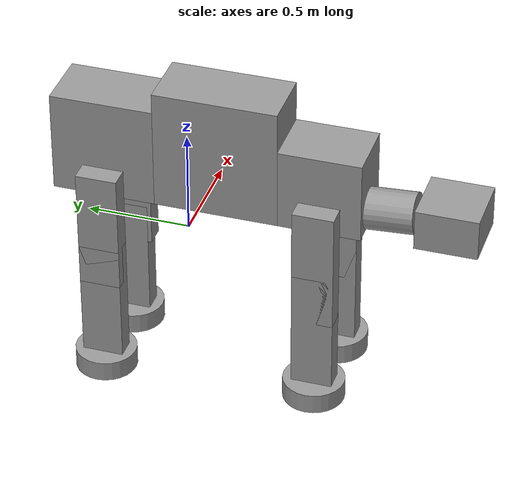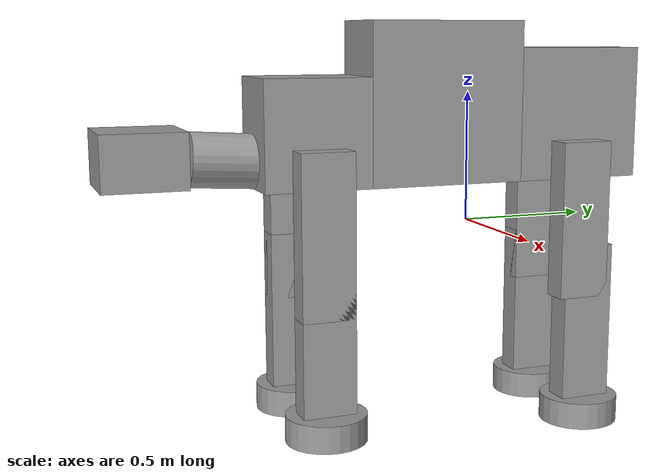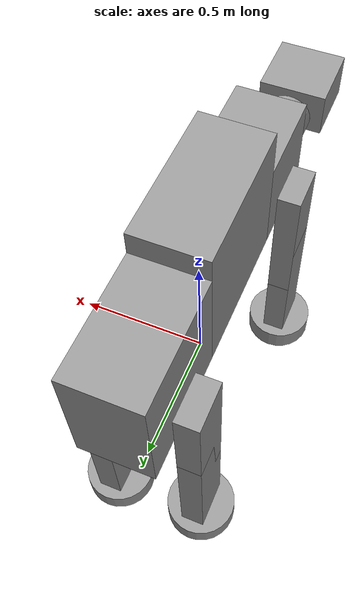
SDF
<?xml version='1.0'?>
<sdf version='1.6'>
  <model name='ATATwalker'>
    <link name='link_0'>
      <pose frame=''>0.046682 -0.166805 0.469107 0 -0 0</pose>
      <inertial>
        <mass>1</mass>
        <inertia>
          <ixx>0.166667</ixx>
          <ixy>0</ixy>
          <ixz>0</ixz>
          <iyy>0.166667</iyy>
          <iyz>0</iyz>
          <izz>0.166667</izz>
        </inertia>
        <pose frame=''>0 0 0 0 -0 0</pose>
      </inertial>
      <gravity>1</gravity>
      <self_collide>0</self_collide>
      <kinematic>0</kinematic>
      <visual name='visual'>
        <pose frame=''>0 0 0 0 -0 0</pose>
        <geometry>
          <box>
            <size>0.3 0.6 0.6</size>
          </box>
        </geometry>
        <material>
          <lighting>1</lighting>
          <script>
            <uri>file://media/materials/scripts/gazebo.material</uri>
            <name>Gazebo/Grey</name>
          </script>
          <ambient>0.3 0.3 0.3 1</ambient>
          <diffuse>0.7 0.7 0.7 1</diffuse>
          <specular>0.01 0.01 0.01 1</specular>
          <emissive>0 0 0 1</emissive>
          <shader type='vertex'>
            <normal_map>__default__</normal_map>
          </shader>
        </material>
        <transparency>0</transparency>
        <cast_shadows>1</cast_shadows>
      </visual>
      <collision name='collision'>
        <laser_retro>0</laser_retro>
        <max_contacts>10</max_contacts>
        <pose frame=''>0 0 0 0 -0 0</pose>
        <geometry>
          <box>
            <size>0.3 0.6 0.6</size>
          </box>
        </geometry>
        <surface>
          <friction>
            <ode>
              <mu>1</mu>
              <mu2>1</mu2>
              <fdir1>0 0 0</fdir1>
              <slip1>0</slip1>
              <slip2>0</slip2>
            </ode>
            <torsional>
              <coefficient>1</coefficient>
              <patch_radius>0</patch_radius>
              <surface_radius>0</surface_radius>
              <use_patch_radius>1</use_patch_radius>
              <ode>
                <slip>0</slip>
              </ode>
            </torsional>
          </friction>
          <bounce>
            <restitution_coefficient>0</restitution_coefficient>
            <threshold>1e+06</threshold>
          </bounce>
          <contact>
            <collide_without_contact>0</collide_without_contact>
            <collide_without_contact_bitmask>1</collide_without_contact_bitmask>
            <collide_bitmask>1</collide_bitmask>
            <ode>
              <soft_cfm>0</soft_cfm>
              <soft_erp>0.2</soft_erp>
              <kp>1e+13</kp>
              <kd>1</kd>
              <max_vel>0.01</max_vel>
              <min_depth>0</min_depth>
            </ode>
            <bullet>
              <split_impulse>1</split_impulse>
              <split_impulse_penetration_threshold>-0.01</split_impulse_penetration_threshold>
              <soft_cfm>0</soft_cfm>
              <soft_erp>0.2</soft_erp>
              <kp>1e+13</kp>
              <kd>1</kd>
            </bullet>
          </contact>
        </surface>
      </collision>
    </link>
    <link name='link_0_clone'>
      <pose frame=''>0.046682 0.383195 0.419107 0 -0 0</pose>
      <inertial>
        <mass>1</mass>
        <inertia>
          <ixx>0.166667</ixx>
          <ixy>0</ixy>
          <ixz>0</ixz>
          <iyy>0.166667</iyy>
          <iyz>0</iyz>
          <izz>0.166667</izz>
        </inertia>
        <pose frame=''>0 0 0 0 -0 0</pose>
      </inertial>
      <self_collide>0</self_collide>
      <kinematic>0</kinematic>
      <gravity>1</gravity>
      <visual name='visual'>
        <pose frame=''>0 0 0 0 -0 0</pose>
        <geometry>
          <box>
            <size>0.3 0.5 0.5</size>
          </box>
        </geometry>
        <material>
          <lighting>1</lighting>
          <script>
            <uri>file://media/materials/scripts/gazebo.material</uri>
            <name>Gazebo/Grey</name>
          </script>
          <ambient>0.3 0.3 0.3 1</ambient>
          <diffuse>0.7 0.7 0.7 1</diffuse>
          <specular>0.01 0.01 0.01 1</specular>
          <emissive>0 0 0 1</emissive>
          <shader type='vertex'>
            <normal_map>__default__</normal_map>
          </shader>
        </material>
        <transparency>0</transparency>
        <cast_shadows>1</cast_shadows>
      </visual>
      <collision name='collision'>
        <laser_retro>0</laser_retro>
        <max_contacts>10</max_contacts>
        <pose frame=''>0 0 0 0 -0 0</pose>
        <geometry>
          <box>
            <size>0.3 0.5 0.5</size>
          </box>
        </geometry>
        <surface>
          <friction>
            <ode>
              <mu>1</mu>
              <mu2>1</mu2>
              <fdir1>0 0 0</fdir1>
              <slip1>0</slip1>
              <slip2>0</slip2>
            </ode>
            <torsional>
              <coefficient>1</coefficient>
              <patch_radius>0</patch_radius>
              <surface_radius>0</surface_radius>
              <use_patch_radius>1</use_patch_radius>
              <ode>
                <slip>0</slip>
              </ode>
            </torsional>
          </friction>
          <bounce>
            <restitution_coefficient>0</restitution_coefficient>
            <threshold>1e+06</threshold>
          </bounce>
          <contact>
            <collide_without_contact>0</collide_without_contact>
            <collide_without_contact_bitmask>1</collide_without_contact_bitmask>
            <collide_bitmask>1</collide_bitmask>
            <ode>
              <soft_cfm>0</soft_cfm>
              <soft_erp>0.2</soft_erp>
              <kp>1e+13</kp>
              <kd>1</kd>
              <max_vel>0.01</max_vel>
              <min_depth>0</min_depth>
            </ode>
            <bullet>
              <split_impulse>1</split_impulse>
              <split_impulse_penetration_threshold>-0.01</split_impulse_penetration_threshold>
              <soft_cfm>0</soft_cfm>
              <soft_erp>0.2</soft_erp>
              <kp>1e+13</kp>
              <kd>1</kd>
            </bullet>
          </contact>
        </surface>
      </collision>
    </link>
    <link name='link_0_clone_clone'>
      <pose frame=''>0.046682 -0.666805 0.369107 0 -0 0</pose>
      <inertial>
        <mass>1</mass>
        <inertia>
          <ixx>0.166667</ixx>
          <ixy>0</ixy>
          <ixz>0</ixz>
          <iyy>0.166667</iyy>
          <iyz>0</iyz>
          <izz>0.166667</izz>
        </inertia>
        <pose frame=''>0 0 0 0 -0 0</pose>
      </inertial>
      <self_collide>0</self_collide>
      <kinematic>0</kinematic>
      <gravity>1</gravity>
      <visual name='visual'>
        <pose frame=''>0 0 0 0 -0 0</pose>
        <geometry>
          <box>
            <size>0.3 0.4 0.4</size>
          </box>
        </geometry>
        <material>
          <lighting>1</lighting>
          <script>
            <uri>file://media/materials/scripts/gazebo.material</uri>
            <name>Gazebo/Grey</name>
          </script>
          <ambient>0.3 0.3 0.3 1</ambient>
          <diffuse>0.7 0.7 0.7 1</diffuse>
          <specular>0.01 0.01 0.01 1</specular>
          <emissive>0 0 0 1</emissive>
          <shader type='vertex'>
            <normal_map>__default__</normal_map>
          </shader>
        </material>
        <transparency>0</transparency>
        <cast_shadows>1</cast_shadows>
      </visual>
      <collision name='collision'>
        <laser_retro>0</laser_retro>
        <max_contacts>10</max_contacts>
        <pose frame=''>0 0 0 0 -0 0</pose>
        <geometry>
          <box>
            <size>0.3 0.4 0.4</size>
          </box>
        </geometry>
        <surface>
          <friction>
            <ode>
              <mu>1</mu>
              <mu2>1</mu2>
              <fdir1>0 0 0</fdir1>
              <slip1>0</slip1>
              <slip2>0</slip2>
            </ode>
            <torsional>
              <coefficient>1</coefficient>
              <patch_radius>0</patch_radius>
              <surface_radius>0</surface_radius>
              <use_patch_radius>1</use_patch_radius>
              <ode>
                <slip>0</slip>
              </ode>
            </torsional>
          </friction>
          <bounce>
            <restitution_coefficient>0</restitution_coefficient>
            <threshold>1e+06</threshold>
          </bounce>
          <contact>
            <collide_without_contact>0</collide_without_contact>
            <collide_without_contact_bitmask>1</collide_without_contact_bitmask>
            <collide_bitmask>1</collide_bitmask>
            <ode>
              <soft_cfm>0</soft_cfm>
              <soft_erp>0.2</soft_erp>
              <kp>1e+13</kp>
              <kd>1</kd>
              <max_vel>0.01</max_vel>
              <min_depth>0</min_depth>
            </ode>
            <bullet>
              <split_impulse>1</split_impulse>
              <split_impulse_penetration_threshold>-0.01</split_impulse_penetration_threshold>
              <soft_cfm>0</soft_cfm>
              <soft_erp>0.2</soft_erp>
              <kp>1e+13</kp>
              <kd>1</kd>
            </bullet>
          </contact>
        </surface>
      </collision>
    </link>
    <link name='link_0_clone_clone_clone'>
      <pose frame=''>0.026682 -1.27175 0.294181 0 -0 0</pose>
      <inertial>
        <mass>1</mass>
        <inertia>
          <ixx>0.166667</ixx>
          <ixy>0</ixy>
          <ixz>0</ixz>
          <iyy>0.166667</iyy>
          <iyz>0</iyz>
          <izz>0.166667</izz>
        </inertia>
        <pose frame=''>0 0 0 0 -0 0</pose>
      </inertial>
      <self_collide>0</self_collide>
      <kinematic>0</kinematic>
      <gravity>1</gravity>
      <visual name='visual'>
        <pose frame=''>0 0 0 0 -0 0</pose>
        <geometry>
          <box>
            <size>0.3 0.3 0.2</size>
          </box>
        </geometry>
        <material>
          <lighting>1</lighting>
          <script>
            <uri>file://media/materials/scripts/gazebo.material</uri>
            <name>Gazebo/Grey</name>
          </script>
          <ambient>0.3 0.3 0.3 1</ambient>
          <diffuse>0.7 0.7 0.7 1</diffuse>
          <specular>0.01 0.01 0.01 1</specular>
          <emissive>0 0 0 1</emissive>
          <shader type='vertex'>
            <normal_map>__default__</normal_map>
          </shader>
        </material>
        <transparency>0</transparency>
        <cast_shadows>1</cast_shadows>
      </visual>
      <collision name='collision'>
        <laser_retro>0</laser_retro>
        <max_contacts>10</max_contacts>
        <pose frame=''>0 0 0 0 -0 0</pose>
        <geometry>
          <box>
            <size>0.3 0.3 0.2</size>
          </box>
        </geometry>
        <surface>
          <friction>
            <ode>
              <mu>1</mu>
              <mu2>1</mu2>
              <fdir1>0 0 0</fdir1>
              <slip1>0</slip1>
              <slip2>0</slip2>
            </ode>
            <torsional>
              <coefficient>1</coefficient>
              <patch_radius>0</patch_radius>
              <surface_radius>0</surface_radius>
              <use_patch_radius>1</use_patch_radius>
              <ode>
                <slip>0</slip>
              </ode>
            </torsional>
          </friction>
          <bounce>
            <restitution_coefficient>0</restitution_coefficient>
            <threshold>1e+06</threshold>
          </bounce>
          <contact>
            <collide_without_contact>0</collide_without_contact>
            <collide_without_contact_bitmask>1</collide_without_contact_bitmask>
            <collide_bitmask>1</collide_bitmask>
            <ode>
              <soft_cfm>0</soft_cfm>
              <soft_erp>0.2</soft_erp>
              <kp>1e+13</kp>
              <kd>1</kd>
              <max_vel>0.01</max_vel>
              <min_depth>0</min_depth>
            </ode>
            <bullet>
              <split_impulse>1</split_impulse>
              <split_impulse_penetration_threshold>-0.01</split_impulse_penetration_threshold>
              <soft_cfm>0</soft_cfm>
              <soft_erp>0.2</soft_erp>
              <kp>1e+13</kp>
              <kd>1</kd>
            </bullet>
          </contact>
        </surface>
      </collision>
    </link>
    <link name='link_1'>
      <pose frame=''>0.026682 -0.975517 0.275278 1.50707 -0 0</pose>
      <inertial>
        <mass>1</mass>
        <inertia>
          <ixx>0.145833</ixx>
          <ixy>0</ixy>
          <ixz>0</ixz>
          <iyy>0.145833</iyy>
          <iyz>0</iyz>
          <izz>0.125</izz>
        </inertia>
        <pose frame=''>0 0 0 0 -0 0</pose>
      </inertial>
      <gravity>1</gravity>
      <self_collide>0</self_collide>
      <kinematic>0</kinematic>
      <visual name='visual'>
        <pose frame=''>0 0 0 0 -0 0</pose>
        <geometry>
          <cylinder>
            <radius>0.1</radius>
            <length>0.25</length>
          </cylinder>
        </geometry>
        <material>
          <lighting>1</lighting>
          <script>
            <uri>file://media/materials/scripts/gazebo.material</uri>
            <name>Gazebo/Grey</name>
          </script>
          <ambient>0.3 0.3 0.3 1</ambient>
          <diffuse>0.7 0.7 0.7 1</diffuse>
          <specular>0.01 0.01 0.01 1</specular>
          <emissive>0 0 0 1</emissive>
          <shader type='vertex'>
            <normal_map>__default__</normal_map>
          </shader>
        </material>
        <transparency>0</transparency>
        <cast_shadows>1</cast_shadows>
      </visual>
      <collision name='collision'>
        <laser_retro>0</laser_retro>
        <max_contacts>10</max_contacts>
        <pose frame=''>0 0 0 0 -0 0</pose>
        <geometry>
          <cylinder>
            <radius>0.1</radius>
            <length>0.25</length>
          </cylinder>
        </geometry>
        <surface>
          <friction>
            <ode>
              <mu>1</mu>
              <mu2>1</mu2>
              <fdir1>0 0 0</fdir1>
              <slip1>0</slip1>
              <slip2>0</slip2>
            </ode>
            <torsional>
              <coefficient>1</coefficient>
              <patch_radius>0</patch_radius>
              <surface_radius>0</surface_radius>
              <use_patch_radius>1</use_patch_radius>
              <ode>
                <slip>0</slip>
              </ode>
            </torsional>
          </friction>
          <bounce>
            <restitution_coefficient>0</restitution_coefficient>
            <threshold>1e+06</threshold>
          </bounce>
          <contact>
            <collide_without_contact>0</collide_without_contact>
            <collide_without_contact_bitmask>1</collide_without_contact_bitmask>
            <collide_bitmask>1</collide_bitmask>
            <ode>
              <soft_cfm>0</soft_cfm>
              <soft_erp>0.2</soft_erp>
              <kp>1e+13</kp>
              <kd>1</kd>
              <max_vel>0.01</max_vel>
              <min_depth>0</min_depth>
            </ode>
            <bullet>
              <split_impulse>1</split_impulse>
              <split_impulse_penetration_threshold>-0.01</split_impulse_penetration_threshold>
              <soft_cfm>0</soft_cfm>
              <soft_erp>0.2</soft_erp>
              <kp>1e+13</kp>
              <kd>1</kd>
            </bullet>
          </contact>
        </surface>
      </collision>
    </link>
    <link name='link_3'>
      <pose frame=''>0.246682 0.363195 0.019107 0 -0 0</pose>
      <inertial>
        <mass>1</mass>
        <inertia>
          <ixx>0.166667</ixx>
          <ixy>0</ixy>
          <ixz>0</ixz>
          <iyy>0.166667</iyy>
          <iyz>0</iyz>
          <izz>0.166667</izz>
        </inertia>
        <pose frame=''>0 0 0 0 -0 0</pose>
      </inertial>
      <gravity>1</gravity>
      <self_collide>0</self_collide>
      <kinematic>0</kinematic>
      <visual name='visual'>
        <pose frame=''>0 0 0 0 -0 0</pose>
        <geometry>
          <box>
            <size>0.1 0.2 0.6</size>
          </box>
        </geometry>
        <material>
          <lighting>1</lighting>
          <script>
            <uri>file://media/materials/scripts/gazebo.material</uri>
            <name>Gazebo/Grey</name>
          </script>
          <ambient>0.3 0.3 0.3 1</ambient>
          <diffuse>0.7 0.7 0.7 1</diffuse>
          <specular>0.01 0.01 0.01 1</specular>
          <emissive>0 0 0 1</emissive>
          <shader type='vertex'>
            <normal_map>__default__</normal_map>
          </shader>
        </material>
        <transparency>0</transparency>
        <cast_shadows>1</cast_shadows>
      </visual>
      <collision name='collision'>
        <laser_retro>0</laser_retro>
        <max_contacts>10</max_contacts>
        <pose frame=''>0 0 0 0 -0 0</pose>
        <geometry>
          <box>
            <size>0.1 0.2 0.6</size>
          </box>
        </geometry>
        <surface>
          <friction>
            <ode>
              <mu>1</mu>
              <mu2>1</mu2>
              <fdir1>0 0 0</fdir1>
              <slip1>0</slip1>
              <slip2>0</slip2>
            </ode>
            <torsional>
              <coefficient>1</coefficient>
              <patch_radius>0</patch_radius>
              <surface_radius>0</surface_radius>
              <use_patch_radius>1</use_patch_radius>
              <ode>
                <slip>0</slip>
              </ode>
            </torsional>
          </friction>
          <bounce>
            <restitution_coefficient>0</restitution_coefficient>
            <threshold>1e+06</threshold>
          </bounce>
          <contact>
            <collide_without_contact>0</collide_without_contact>
            <collide_without_contact_bitmask>1</collide_without_contact_bitmask>
            <collide_bitmask>1</collide_bitmask>
            <ode>
              <soft_cfm>0</soft_cfm>
              <soft_erp>0.2</soft_erp>
              <kp>1e+13</kp>
              <kd>1</kd>
              <max_vel>0.01</max_vel>
              <min_depth>0</min_depth>
            </ode>
            <bullet>
              <split_impulse>1</split_impulse>
              <split_impulse_penetration_threshold>-0.01</split_impulse_penetration_threshold>
              <soft_cfm>0</soft_cfm>
              <soft_erp>0.2</soft_erp>
              <kp>1e+13</kp>
              <kd>1</kd>
            </bullet>
          </contact>
        </surface>
      </collision>
    </link>
    <link name='link_3_clone'>
      <pose frame=''>-0.153318 0.383195 0.019107 0 -0 0</pose>
      <inertial>
        <mass>1</mass>
        <inertia>
          <ixx>0.166667</ixx>
          <ixy>0</ixy>
          <ixz>0</ixz>
          <iyy>0.166667</iyy>
          <iyz>0</iyz>
          <izz>0.166667</izz>
        </inertia>
        <pose frame=''>0 0 0 0 -0 0</pose>
      </inertial>
      <self_collide>0</self_collide>
      <kinematic>0</kinematic>
      <visual name='visual'>
        <pose frame=''>0 0 0 0 -0 0</pose>
        <geometry>
          <box>
            <size>0.1 0.2 0.6</size>
          </box>
        </geometry>
        <material>
          <lighting>1</lighting>
          <script>
            <uri>file://media/materials/scripts/gazebo.material</uri>
            <name>Gazebo/Grey</name>
          </script>
          <ambient>0.3 0.3 0.3 1</ambient>
          <diffuse>0.7 0.7 0.7 1</diffuse>
          <specular>0.01 0.01 0.01 1</specular>
          <emissive>0 0 0 1</emissive>
          <shader type='vertex'>
            <normal_map>__default__</normal_map>
          </shader>
        </material>
        <transparency>0</transparency>
        <cast_shadows>1</cast_shadows>
      </visual>
      <collision name='collision'>
        <laser_retro>0</laser_retro>
        <max_contacts>10</max_contacts>
        <pose frame=''>0 0 0 0 -0 0</pose>
        <geometry>
          <box>
            <size>0.1 0.2 0.6</size>
          </box>
        </geometry>
        <surface>
          <friction>
            <ode>
              <mu>1</mu>
              <mu2>1</mu2>
              <fdir1>0 0 0</fdir1>
              <slip1>0</slip1>
              <slip2>0</slip2>
            </ode>
            <torsional>
              <coefficient>1</coefficient>
              <patch_radius>0</patch_radius>
              <surface_radius>0</surface_radius>
              <use_patch_radius>1</use_patch_radius>
              <ode>
                <slip>0</slip>
              </ode>
            </torsional>
          </friction>
          <bounce>
            <restitution_coefficient>0</restitution_coefficient>
            <threshold>1e+06</threshold>
          </bounce>
          <contact>
            <collide_without_contact>0</collide_without_contact>
            <collide_without_contact_bitmask>1</collide_without_contact_bitmask>
            <collide_bitmask>1</collide_bitmask>
            <ode>
              <soft_cfm>0</soft_cfm>
              <soft_erp>0.2</soft_erp>
              <kp>1e+13</kp>
              <kd>1</kd>
              <max_vel>0.01</max_vel>
              <min_depth>0</min_depth>
            </ode>
            <bullet>
              <split_impulse>1</split_impulse>
              <split_impulse_penetration_threshold>-0.01</split_impulse_penetration_threshold>
              <soft_cfm>0</soft_cfm>
              <soft_erp>0.2</soft_erp>
              <kp>1e+13</kp>
              <kd>1</kd>
            </bullet>
          </contact>
        </surface>
      </collision>
    </link>
    <link name='link_3_clone_0'>
      <pose frame=''>0.246682 0.383195 -0.380893 0 -0 0</pose>
      <inertial>
        <mass>1</mass>
        <inertia>
          <ixx>0.166667</ixx>
          <ixy>0</ixy>
          <ixz>0</ixz>
          <iyy>0.166667</iyy>
          <iyz>0</iyz>
          <izz>0.166667</izz>
        </inertia>
        <pose frame=''>0 0 0 0 -0 0</pose>
      </inertial>
      <self_collide>0</self_collide>
      <kinematic>0</kinematic>
      <visual name='visual'>
        <pose frame=''>0 0 0 0 -0 0</pose>
        <geometry>
          <box>
            <size>0.1 0.2 0.6</size>
          </box>
        </geometry>
        <material>
          <lighting>1</lighting>
          <script>
            <uri>file://media/materials/scripts/gazebo.material</uri>
            <name>Gazebo/Grey</name>
          </script>
          <ambient>0.3 0.3 0.3 1</ambient>
          <diffuse>0.7 0.7 0.7 1</diffuse>
          <specular>0.01 0.01 0.01 1</specular>
          <emissive>0 0 0 1</emissive>
          <shader type='vertex'>
            <normal_map>__default__</normal_map>
          </shader>
        </material>
        <transparency>0</transparency>
        <cast_shadows>1</cast_shadows>
      </visual>
      <collision name='collision'>
        <laser_retro>0</laser_retro>
        <max_contacts>10</max_contacts>
        <pose frame=''>0 0 0 0 -0 0</pose>
        <geometry>
          <box>
            <size>0.1 0.2 0.6</size>
          </box>
        </geometry>
        <surface>
          <friction>
            <ode>
              <mu>1</mu>
              <mu2>1</mu2>
              <fdir1>0 0 0</fdir1>
              <slip1>0</slip1>
              <slip2>0</slip2>
            </ode>
            <torsional>
              <coefficient>1</coefficient>
              <patch_radius>0</patch_radius>
              <surface_radius>0</surface_radius>
              <use_patch_radius>1</use_patch_radius>
              <ode>
                <slip>0</slip>
              </ode>
            </torsional>
          </friction>
          <bounce>
            <restitution_coefficient>0</restitution_coefficient>
            <threshold>1e+06</threshold>
          </bounce>
          <contact>
            <collide_without_contact>0</collide_without_contact>
            <collide_without_contact_bitmask>1</collide_without_contact_bitmask>
            <collide_bitmask>1</collide_bitmask>
            <ode>
              <soft_cfm>0</soft_cfm>
              <soft_erp>0.2</soft_erp>
              <kp>1e+13</kp>
              <kd>1</kd>
              <max_vel>0.01</max_vel>
              <min_depth>0</min_depth>
            </ode>
            <bullet>
              <split_impulse>1</split_impulse>
              <split_impulse_penetration_threshold>-0.01</split_impulse_penetration_threshold>
              <soft_cfm>0</soft_cfm>
              <soft_erp>0.2</soft_erp>
              <kp>1e+13</kp>
              <kd>1</kd>
            </bullet>
          </contact>
        </surface>
      </collision>
    </link>
    <link name='link_3_clone_0_clone'>
      <pose frame=''>0.246682 -0.666805 0.019107 0 -0 0</pose>
      <inertial>
        <mass>1</mass>
        <inertia>
          <ixx>0.166667</ixx>
          <ixy>0</ixy>
          <ixz>0</ixz>
          <iyy>0.166667</iyy>
          <iyz>0</iyz>
          <izz>0.166667</izz>
        </inertia>
        <pose frame=''>0 0 0 0 -0 0</pose>
      </inertial>
      <self_collide>0</self_collide>
      <kinematic>0</kinematic>
      <gravity>1</gravity>
      <visual name='visual'>
        <pose frame=''>0 0 0 0 -0 0</pose>
        <geometry>
          <box>
            <size>0.1 0.2 0.6</size>
          </box>
        </geometry>
        <material>
          <lighting>1</lighting>
          <script>
            <uri>file://media/materials/scripts/gazebo.material</uri>
            <name>Gazebo/Grey</name>
          </script>
          <ambient>0.3 0.3 0.3 1</ambient>
          <diffuse>0.7 0.7 0.7 1</diffuse>
          <specular>0.01 0.01 0.01 1</specular>
          <emissive>0 0 0 1</emissive>
          <shader type='vertex'>
            <normal_map>__default__</normal_map>
          </shader>
        </material>
        <transparency>0</transparency>
        <cast_shadows>1</cast_shadows>
      </visual>
      <collision name='collision'>
        <laser_retro>0</laser_retro>
        <max_contacts>10</max_contacts>
        <pose frame=''>0 0 0 0 -0 0</pose>
        <geometry>
          <box>
            <size>0.1 0.2 0.6</size>
          </box>
        </geometry>
        <surface>
          <friction>
            <ode>
              <mu>1</mu>
              <mu2>1</mu2>
              <fdir1>0 0 0</fdir1>
              <slip1>0</slip1>
              <slip2>0</slip2>
            </ode>
            <torsional>
              <coefficient>1</coefficient>
              <patch_radius>0</patch_radius>
              <surface_radius>0</surface_radius>
              <use_patch_radius>1</use_patch_radius>
              <ode>
                <slip>0</slip>
              </ode>
            </torsional>
          </friction>
          <bounce>
            <restitution_coefficient>0</restitution_coefficient>
            <threshold>1e+06</threshold>
          </bounce>
          <contact>
            <collide_without_contact>0</collide_without_contact>
            <collide_without_contact_bitmask>1</collide_without_contact_bitmask>
            <collide_bitmask>1</collide_bitmask>
            <ode>
              <soft_cfm>0</soft_cfm>
              <soft_erp>0.2</soft_erp>
              <kp>1e+13</kp>
              <kd>1</kd>
              <max_vel>0.01</max_vel>
              <min_depth>0</min_depth>
            </ode>
            <bullet>
              <split_impulse>1</split_impulse>
              <split_impulse_penetration_threshold>-0.01</split_impulse_penetration_threshold>
              <soft_cfm>0</soft_cfm>
              <soft_erp>0.2</soft_erp>
              <kp>1e+13</kp>
              <kd>1</kd>
            </bullet>
          </contact>
        </surface>
      </collision>
    </link>
    <link name='link_3_clone_0_clone_clone'>
      <pose frame=''>0.246682 -0.666805 -0.330893 0 -0 0</pose>
      <inertial>
        <mass>1</mass>
        <inertia>
          <ixx>0.166667</ixx>
          <ixy>0</ixy>
          <ixz>0</ixz>
          <iyy>0.166667</iyy>
          <iyz>0</iyz>
          <izz>0.166667</izz>
        </inertia>
        <pose frame=''>0 0 0 0 -0 0</pose>
      </inertial>
      <self_collide>0</self_collide>
      <kinematic>0</kinematic>
      <visual name='visual'>
        <pose frame=''>0 0 0 0 -0 0</pose>
        <geometry>
          <box>
            <size>0.1 0.2 0.6</size>
          </box>
        </geometry>
        <material>
          <lighting>1</lighting>
          <script>
            <uri>file://media/materials/scripts/gazebo.material</uri>
            <name>Gazebo/Grey</name>
          </script>
          <ambient>0.3 0.3 0.3 1</ambient>
          <diffuse>0.7 0.7 0.7 1</diffuse>
          <specular>0.01 0.01 0.01 1</specular>
          <emissive>0 0 0 1</emissive>
          <shader type='vertex'>
            <normal_map>__default__</normal_map>
          </shader>
        </material>
        <transparency>0</transparency>
        <cast_shadows>1</cast_shadows>
      </visual>
      <collision name='collision'>
        <laser_retro>0</laser_retro>
        <max_contacts>10</max_contacts>
        <pose frame=''>0 0 0 0 -0 0</pose>
        <geometry>
          <box>
            <size>0.1 0.2 0.6</size>
          </box>
        </geometry>
        <surface>
          <friction>
            <ode>
              <mu>1</mu>
              <mu2>1</mu2>
              <fdir1>0 0 0</fdir1>
              <slip1>0</slip1>
              <slip2>0</slip2>
            </ode>
            <torsional>
              <coefficient>1</coefficient>
              <patch_radius>0</patch_radius>
              <surface_radius>0</surface_radius>
              <use_patch_radius>1</use_patch_radius>
              <ode>
                <slip>0</slip>
              </ode>
            </torsional>
          </friction>
          <bounce>
            <restitution_coefficient>0</restitution_coefficient>
            <threshold>1e+06</threshold>
          </bounce>
          <contact>
            <collide_without_contact>0</collide_without_contact>
            <collide_without_contact_bitmask>1</collide_without_contact_bitmask>
            <collide_bitmask>1</collide_bitmask>
            <ode>
              <soft_cfm>0</soft_cfm>
              <soft_erp>0.2</soft_erp>
              <kp>1e+13</kp>
              <kd>1</kd>
              <max_vel>0.01</max_vel>
              <min_depth>0</min_depth>
            </ode>
            <bullet>
              <split_impulse>1</split_impulse>
              <split_impulse_penetration_threshold>-0.01</split_impulse_penetration_threshold>
              <soft_cfm>0</soft_cfm>
              <soft_erp>0.2</soft_erp>
              <kp>1e+13</kp>
              <kd>1</kd>
            </bullet>
          </contact>
        </surface>
      </collision>
    </link>
    <link name='link_3_clone_0_clone_clone_0'>
      <pose frame=''>-0.153318 -0.666805 0.019107 0 -0 0</pose>
      <inertial>
        <mass>1</mass>
        <inertia>
          <ixx>0.166667</ixx>
          <ixy>0</ixy>
          <ixz>0</ixz>
          <iyy>0.166667</iyy>
          <iyz>0</iyz>
          <izz>0.166667</izz>
        </inertia>
        <pose frame=''>0 0 0 0 -0 0</pose>
      </inertial>
      <self_collide>0</self_collide>
      <kinematic>0</kinematic>
      <visual name='visual'>
        <pose frame=''>0 0 0 0 -0 0</pose>
        <geometry>
          <box>
            <size>0.1 0.2 0.6</size>
          </box>
        </geometry>
        <material>
          <lighting>1</lighting>
          <script>
            <uri>file://media/materials/scripts/gazebo.material</uri>
            <name>Gazebo/Grey</name>
          </script>
          <ambient>0.3 0.3 0.3 1</ambient>
          <diffuse>0.7 0.7 0.7 1</diffuse>
          <specular>0.01 0.01 0.01 1</specular>
          <emissive>0 0 0 1</emissive>
          <shader type='vertex'>
            <normal_map>__default__</normal_map>
          </shader>
        </material>
        <transparency>0</transparency>
        <cast_shadows>1</cast_shadows>
      </visual>
      <collision name='collision'>
        <laser_retro>0</laser_retro>
        <max_contacts>10</max_contacts>
        <pose frame=''>0 0 0 0 -0 0</pose>
        <geometry>
          <box>
            <size>0.1 0.2 0.6</size>
          </box>
        </geometry>
        <surface>
          <friction>
            <ode>
              <mu>1</mu>
              <mu2>1</mu2>
              <fdir1>0 0 0</fdir1>
              <slip1>0</slip1>
              <slip2>0</slip2>
            </ode>
            <torsional>
              <coefficient>1</coefficient>
              <patch_radius>0</patch_radius>
              <surface_radius>0</surface_radius>
              <use_patch_radius>1</use_patch_radius>
              <ode>
                <slip>0</slip>
              </ode>
            </torsional>
          </friction>
          <bounce>
            <restitution_coefficient>0</restitution_coefficient>
            <threshold>1e+06</threshold>
          </bounce>
          <contact>
            <collide_without_contact>0</collide_without_contact>
            <collide_without_contact_bitmask>1</collide_without_contact_bitmask>
            <collide_bitmask>1</collide_bitmask>
            <ode>
              <soft_cfm>0</soft_cfm>
              <soft_erp>0.2</soft_erp>
              <kp>1e+13</kp>
              <kd>1</kd>
              <max_vel>0.01</max_vel>
              <min_depth>0</min_depth>
            </ode>
            <bullet>
              <split_impulse>1</split_impulse>
              <split_impulse_penetration_threshold>-0.01</split_impulse_penetration_threshold>
              <soft_cfm>0</soft_cfm>
              <soft_erp>0.2</soft_erp>
              <kp>1e+13</kp>
              <kd>1</kd>
            </bullet>
          </contact>
        </surface>
      </collision>
    </link>
    <link name='link_3_clone_0_clone_clone_clone'>
      <pose frame=''>-0.153318 -0.666805 -0.330892 0 -0 0</pose>
      <inertial>
        <mass>1</mass>
        <inertia>
          <ixx>0.166667</ixx>
          <ixy>0</ixy>
          <ixz>0</ixz>
          <iyy>0.166667</iyy>
          <iyz>0</iyz>
          <izz>0.166667</izz>
        </inertia>
        <pose frame=''>0 0 0 0 -0 0</pose>
      </inertial>
      <self_collide>0</self_collide>
      <kinematic>0</kinematic>
      <visual name='visual'>
        <pose frame=''>0 0 0 0 -0 0</pose>
        <geometry>
          <box>
            <size>0.1 0.2 0.6</size>
          </box>
        </geometry>
        <material>
          <lighting>1</lighting>
          <script>
            <uri>file://media/materials/scripts/gazebo.material</uri>
            <name>Gazebo/Grey</name>
          </script>
          <ambient>0.3 0.3 0.3 1</ambient>
          <diffuse>0.7 0.7 0.7 1</diffuse>
          <specular>0.01 0.01 0.01 1</specular>
          <emissive>0 0 0 1</emissive>
          <shader type='vertex'>
            <normal_map>__default__</normal_map>
          </shader>
        </material>
        <transparency>0</transparency>
        <cast_shadows>1</cast_shadows>
      </visual>
      <collision name='collision'>
        <laser_retro>0</laser_retro>
        <max_contacts>10</max_contacts>
        <pose frame=''>0 0 0 0 -0 0</pose>
        <geometry>
          <box>
            <size>0.1 0.2 0.6</size>
          </box>
        </geometry>
        <surface>
          <friction>
            <ode>
              <mu>1</mu>
              <mu2>1</mu2>
              <fdir1>0 0 0</fdir1>
              <slip1>0</slip1>
              <slip2>0</slip2>
            </ode>
            <torsional>
              <coefficient>1</coefficient>
              <patch_radius>0</patch_radius>
              <surface_radius>0</surface_radius>
              <use_patch_radius>1</use_patch_radius>
              <ode>
                <slip>0</slip>
              </ode>
            </torsional>
          </friction>
          <bounce>
            <restitution_coefficient>0</restitution_coefficient>
            <threshold>1e+06</threshold>
          </bounce>
          <contact>
            <collide_without_contact>0</collide_without_contact>
            <collide_without_contact_bitmask>1</collide_without_contact_bitmask>
            <collide_bitmask>1</collide_bitmask>
            <ode>
              <soft_cfm>0</soft_cfm>
              <soft_erp>0.2</soft_erp>
              <kp>1e+13</kp>
              <kd>1</kd>
              <max_vel>0.01</max_vel>
              <min_depth>0</min_depth>
            </ode>
            <bullet>
              <split_impulse>1</split_impulse>
              <split_impulse_penetration_threshold>-0.01</split_impulse_penetration_threshold>
              <soft_cfm>0</soft_cfm>
              <soft_erp>0.2</soft_erp>
              <kp>1e+13</kp>
              <kd>1</kd>
            </bullet>
          </contact>
        </surface>
      </collision>
    </link>
    <link name='link_3_clone_1'>
      <pose frame=''>-0.153318 0.383195 -0.380893 0 -0 0</pose>
      <inertial>
        <mass>1</mass>
        <inertia>
          <ixx>0.166667</ixx>
          <ixy>0</ixy>
          <ixz>0</ixz>
          <iyy>0.166667</iyy>
          <iyz>0</iyz>
          <izz>0.166667</izz>
        </inertia>
        <pose frame=''>0 0 0 0 -0 0</pose>
      </inertial>
      <self_collide>0</self_collide>
      <kinematic>0</kinematic>
      <visual name='visual'>
        <pose frame=''>0 0 0 0 -0 0</pose>
        <geometry>
          <box>
            <size>0.1 0.2 0.6</size>
          </box>
        </geometry>
        <material>
          <lighting>1</lighting>
          <script>
            <uri>file://media/materials/scripts/gazebo.material</uri>
            <name>Gazebo/Grey</name>
          </script>
          <ambient>0.3 0.3 0.3 1</ambient>
          <diffuse>0.7 0.7 0.7 1</diffuse>
          <specular>0.01 0.01 0.01 1</specular>
          <emissive>0 0 0 1</emissive>
          <shader type='vertex'>
            <normal_map>__default__</normal_map>
          </shader>
        </material>
        <transparency>0</transparency>
        <cast_shadows>1</cast_shadows>
      </visual>
      <collision name='collision'>
        <laser_retro>0</laser_retro>
        <max_contacts>10</max_contacts>
        <pose frame=''>0 0 0 0 -0 0</pose>
        <geometry>
          <box>
            <size>0.1 0.2 0.6</size>
          </box>
        </geometry>
        <surface>
          <friction>
            <ode>
              <mu>1</mu>
              <mu2>1</mu2>
              <fdir1>0 0 0</fdir1>
              <slip1>0</slip1>
              <slip2>0</slip2>
            </ode>
            <torsional>
              <coefficient>1</coefficient>
              <patch_radius>0</patch_radius>
              <surface_radius>0</surface_radius>
              <use_patch_radius>1</use_patch_radius>
              <ode>
                <slip>0</slip>
              </ode>
            </torsional>
          </friction>
          <bounce>
            <restitution_coefficient>0</restitution_coefficient>
            <threshold>1e+06</threshold>
          </bounce>
          <contact>
            <collide_without_contact>0</collide_without_contact>
            <collide_without_contact_bitmask>1</collide_without_contact_bitmask>
            <collide_bitmask>1</collide_bitmask>
            <ode>
              <soft_cfm>0</soft_cfm>
              <soft_erp>0.2</soft_erp>
              <kp>1e+13</kp>
              <kd>1</kd>
              <max_vel>0.01</max_vel>
              <min_depth>0</min_depth>
            </ode>
            <bullet>
              <split_impulse>1</split_impulse>
              <split_impulse_penetration_threshold>-0.01</split_impulse_penetration_threshold>
              <soft_cfm>0</soft_cfm>
              <soft_erp>0.2</soft_erp>
              <kp>1e+13</kp>
              <kd>1</kd>
            </bullet>
          </contact>
        </surface>
      </collision>
    </link>
    <link name='link_4'>
      <pose frame=''>0.246682 -0.666805 -0.680893 3.14159 -0 0</pose>
      <inertial>
        <mass>1</mass>
        <inertia>
          <ixx>0.145833</ixx>
          <ixy>0</ixy>
          <ixz>0</ixz>
          <iyy>0.145833</iyy>
          <iyz>0</iyz>
          <izz>0.125</izz>
        </inertia>
        <pose frame=''>0 0 0 0 -0 0</pose>
      </inertial>
      <gravity>1</gravity>
      <self_collide>0</self_collide>
      <kinematic>0</kinematic>
      <visual name='visual'>
        <pose frame=''>0 0 0 0 -0 0</pose>
        <geometry>
          <cylinder>
            <radius>0.15</radius>
            <length>0.1</length>
          </cylinder>
        </geometry>
        <material>
          <lighting>1</lighting>
          <script>
            <uri>file://media/materials/scripts/gazebo.material</uri>
            <name>Gazebo/Grey</name>
          </script>
          <ambient>0.3 0.3 0.3 1</ambient>
          <diffuse>0.7 0.7 0.7 1</diffuse>
          <specular>0.01 0.01 0.01 1</specular>
          <emissive>0 0 0 1</emissive>
          <shader type='vertex'>
            <normal_map>__default__</normal_map>
          </shader>
        </material>
        <transparency>0</transparency>
        <cast_shadows>1</cast_shadows>
      </visual>
      <collision name='collision'>
        <laser_retro>0</laser_retro>
        <max_contacts>10</max_contacts>
        <pose frame=''>0 0 0 0 -0 0</pose>
        <geometry>
          <cylinder>
            <radius>0.15</radius>
            <length>0.1</length>
          </cylinder>
        </geometry>
        <surface>
          <friction>
            <ode>
              <mu>1</mu>
              <mu2>1</mu2>
              <fdir1>0 0 0</fdir1>
              <slip1>0</slip1>
              <slip2>0</slip2>
            </ode>
            <torsional>
              <coefficient>1</coefficient>
              <patch_radius>0</patch_radius>
              <surface_radius>0</surface_radius>
              <use_patch_radius>1</use_patch_radius>
              <ode>
                <slip>0</slip>
              </ode>
            </torsional>
          </friction>
          <bounce>
            <restitution_coefficient>0</restitution_coefficient>
            <threshold>1e+06</threshold>
          </bounce>
          <contact>
            <collide_without_contact>0</collide_without_contact>
            <collide_without_contact_bitmask>1</collide_without_contact_bitmask>
            <collide_bitmask>1</collide_bitmask>
            <ode>
              <soft_cfm>0</soft_cfm>
              <soft_erp>0.2</soft_erp>
              <kp>1e+13</kp>
              <kd>1</kd>
              <max_vel>0.01</max_vel>
              <min_depth>0</min_depth>
            </ode>
            <bullet>
              <split_impulse>1</split_impulse>
              <split_impulse_penetration_threshold>-0.01</split_impulse_penetration_threshold>
              <soft_cfm>0</soft_cfm>
              <soft_erp>0.2</soft_erp>
              <kp>1e+13</kp>
              <kd>1</kd>
            </bullet>
          </contact>
        </surface>
      </collision>
    </link>
    <link name='link_4_clone'>
      <pose frame=''>0.246682 0.383195 -0.730893 3.14159 -0 0</pose>
      <inertial>
        <mass>1</mass>
        <inertia>
          <ixx>0.145833</ixx>
          <ixy>0</ixy>
          <ixz>0</ixz>
          <iyy>0.145833</iyy>
          <iyz>0</iyz>
          <izz>0.125</izz>
        </inertia>
        <pose frame=''>0 0 0 0 -0 0</pose>
      </inertial>
      <self_collide>0</self_collide>
      <kinematic>0</kinematic>
      <visual name='visual'>
        <pose frame=''>0 0 0 0 -0 0</pose>
        <geometry>
          <cylinder>
            <radius>0.15</radius>
            <length>0.1</length>
          </cylinder>
        </geometry>
        <material>
          <lighting>1</lighting>
          <script>
            <uri>file://media/materials/scripts/gazebo.material</uri>
            <name>Gazebo/Grey</name>
          </script>
          <ambient>0.3 0.3 0.3 1</ambient>
          <diffuse>0.7 0.7 0.7 1</diffuse>
          <specular>0.01 0.01 0.01 1</specular>
          <emissive>0 0 0 1</emissive>
          <shader type='vertex'>
            <normal_map>__default__</normal_map>
          </shader>
        </material>
        <transparency>0</transparency>
        <cast_shadows>1</cast_shadows>
      </visual>
      <collision name='collision'>
        <laser_retro>0</laser_retro>
        <max_contacts>10</max_contacts>
        <pose frame=''>0 0 0 0 -0 0</pose>
        <geometry>
          <cylinder>
            <radius>0.15</radius>
            <length>0.1</length>
          </cylinder>
        </geometry>
        <surface>
          <friction>
            <ode>
              <mu>1</mu>
              <mu2>1</mu2>
              <fdir1>0 0 0</fdir1>
              <slip1>0</slip1>
              <slip2>0</slip2>
            </ode>
            <torsional>
              <coefficient>1</coefficient>
              <patch_radius>0</patch_radius>
              <surface_radius>0</surface_radius>
              <use_patch_radius>1</use_patch_radius>
              <ode>
                <slip>0</slip>
              </ode>
            </torsional>
          </friction>
          <bounce>
            <restitution_coefficient>0</restitution_coefficient>
            <threshold>1e+06</threshold>
          </bounce>
          <contact>
            <collide_without_contact>0</collide_without_contact>
            <collide_without_contact_bitmask>1</collide_without_contact_bitmask>
            <collide_bitmask>1</collide_bitmask>
            <ode>
              <soft_cfm>0</soft_cfm>
              <soft_erp>0.2</soft_erp>
              <kp>1e+13</kp>
              <kd>1</kd>
              <max_vel>0.01</max_vel>
              <min_depth>0</min_depth>
            </ode>
            <bullet>
              <split_impulse>1</split_impulse>
              <split_impulse_penetration_threshold>-0.01</split_impulse_penetration_threshold>
              <soft_cfm>0</soft_cfm>
              <soft_erp>0.2</soft_erp>
              <kp>1e+13</kp>
              <kd>1</kd>
            </bullet>
          </contact>
        </surface>
      </collision>
    </link>
    <link name='link_4_clone_0'>
      <pose frame=''>-0.153318 -0.666805 -0.680893 3.14159 -0 0</pose>
      <inertial>
        <mass>1</mass>
        <inertia>
          <ixx>0.145833</ixx>
          <ixy>0</ixy>
          <ixz>0</ixz>
          <iyy>0.145833</iyy>
          <iyz>0</iyz>
          <izz>0.125</izz>
        </inertia>
        <pose frame=''>0 0 0 0 -0 0</pose>
      </inertial>
      <self_collide>0</self_collide>
      <kinematic>0</kinematic>
      <visual name='visual'>
        <pose frame=''>0 0 0 0 -0 0</pose>
        <geometry>
          <cylinder>
            <radius>0.15</radius>
            <length>0.1</length>
          </cylinder>
        </geometry>
        <material>
          <lighting>1</lighting>
          <script>
            <uri>file://media/materials/scripts/gazebo.material</uri>
            <name>Gazebo/Grey</name>
          </script>
          <ambient>0.3 0.3 0.3 1</ambient>
          <diffuse>0.7 0.7 0.7 1</diffuse>
          <specular>0.01 0.01 0.01 1</specular>
          <emissive>0 0 0 1</emissive>
          <shader type='vertex'>
            <normal_map>__default__</normal_map>
          </shader>
        </material>
        <transparency>0</transparency>
        <cast_shadows>1</cast_shadows>
      </visual>
      <collision name='collision'>
        <laser_retro>0</laser_retro>
        <max_contacts>10</max_contacts>
        <pose frame=''>0 0 0 0 -0 0</pose>
        <geometry>
          <cylinder>
            <radius>0.15</radius>
            <length>0.1</length>
          </cylinder>
        </geometry>
        <surface>
          <friction>
            <ode>
              <mu>1</mu>
              <mu2>1</mu2>
              <fdir1>0 0 0</fdir1>
              <slip1>0</slip1>
              <slip2>0</slip2>
            </ode>
            <torsional>
              <coefficient>1</coefficient>
              <patch_radius>0</patch_radius>
              <surface_radius>0</surface_radius>
              <use_patch_radius>1</use_patch_radius>
              <ode>
                <slip>0</slip>
              </ode>
            </torsional>
          </friction>
          <bounce>
            <restitution_coefficient>0</restitution_coefficient>
            <threshold>1e+06</threshold>
          </bounce>
          <contact>
            <collide_without_contact>0</collide_without_contact>
            <collide_without_contact_bitmask>1</collide_without_contact_bitmask>
            <collide_bitmask>1</collide_bitmask>
            <ode>
              <soft_cfm>0</soft_cfm>
              <soft_erp>0.2</soft_erp>
              <kp>1e+13</kp>
              <kd>1</kd>
              <max_vel>0.01</max_vel>
              <min_depth>0</min_depth>
            </ode>
            <bullet>
              <split_impulse>1</split_impulse>
              <split_impulse_penetration_threshold>-0.01</split_impulse_penetration_threshold>
              <soft_cfm>0</soft_cfm>
              <soft_erp>0.2</soft_erp>
              <kp>1e+13</kp>
              <kd>1</kd>
            </bullet>
          </contact>
        </surface>
      </collision>
    </link>
    <link name='link_4_clone_1'>
      <pose frame=''>-0.153318 0.383195 -0.730893 3.14159 -0 0</pose>
      <inertial>
        <mass>1</mass>
        <inertia>
          <ixx>0.145833</ixx>
          <ixy>0</ixy>
          <ixz>0</ixz>
          <iyy>0.145833</iyy>
          <iyz>0</iyz>
          <izz>0.125</izz>
        </inertia>
        <pose frame=''>0 0 0 0 -0 0</pose>
      </inertial>
      <self_collide>0</self_collide>
      <kinematic>0</kinematic>
      <visual name='visual'>
        <pose frame=''>0 0 0 0 -0 0</pose>
        <geometry>
          <cylinder>
            <radius>0.15</radius>
            <length>0.1</length>
          </cylinder>
        </geometry>
        <material>
          <lighting>1</lighting>
          <script>
            <uri>file://media/materials/scripts/gazebo.material</uri>
            <name>Gazebo/Grey</name>
          </script>
          <ambient>0.3 0.3 0.3 1</ambient>
          <diffuse>0.7 0.7 0.7 1</diffuse>
          <specular>0.01 0.01 0.01 1</specular>
          <emissive>0 0 0 1</emissive>
          <shader type='vertex'>
            <normal_map>__default__</normal_map>
          </shader>
        </material>
        <transparency>0</transparency>
        <cast_shadows>1</cast_shadows>
      </visual>
      <collision name='collision'>
        <laser_retro>0</laser_retro>
        <max_contacts>10</max_contacts>
        <pose frame=''>0 0 0 0 -0 0</pose>
        <geometry>
          <cylinder>
            <radius>0.15</radius>
            <length>0.1</length>
          </cylinder>
        </geometry>
        <surface>
          <friction>
            <ode>
              <mu>1</mu>
              <mu2>1</mu2>
              <fdir1>0 0 0</fdir1>
              <slip1>0</slip1>
              <slip2>0</slip2>
            </ode>
            <torsional>
              <coefficient>1</coefficient>
              <patch_radius>0</patch_radius>
              <surface_radius>0</surface_radius>
              <use_patch_radius>1</use_patch_radius>
              <ode>
                <slip>0</slip>
              </ode>
            </torsional>
          </friction>
          <bounce>
            <restitution_coefficient>0</restitution_coefficient>
            <threshold>1e+06</threshold>
          </bounce>
          <contact>
            <collide_without_contact>0</collide_without_contact>
            <collide_without_contact_bitmask>1</collide_without_contact_bitmask>
            <collide_bitmask>1</collide_bitmask>
            <ode>
              <soft_cfm>0</soft_cfm>
              <soft_erp>0.2</soft_erp>
              <kp>1e+13</kp>
              <kd>1</kd>
              <max_vel>0.01</max_vel>
              <min_depth>0</min_depth>
            </ode>
            <bullet>
              <split_impulse>1</split_impulse>
              <split_impulse_penetration_threshold>-0.01</split_impulse_penetration_threshold>
              <soft_cfm>0</soft_cfm>
              <soft_erp>0.2</soft_erp>
              <kp>1e+13</kp>
              <kd>1</kd>
            </bullet>
          </contact>
        </surface>
      </collision>
    </link>
    <joint name='link_0_JOINT_1' type='fixed'>
      <parent>link_0</parent>
      <child>link_0_clone</child>
      <pose frame=''>0 0 0 0 -0 0</pose>
      <physics>
        <ode>
          <limit>
            <cfm>0</cfm>
            <erp>0.2</erp>
          </limit>
          <suspension>
            <cfm>0</cfm>
            <erp>0.2</erp>
          </suspension>
        </ode>
      </physics>
    </joint>
    <joint name='link_0_JOINT_2' type='fixed'>
      <parent>link_0</parent>
      <child>link_0_clone_clone</child>
      <pose frame=''>0 0 0 0 -0 0</pose>
      <physics>
        <ode>
          <limit>
            <cfm>0</cfm>
            <erp>0.2</erp>
          </limit>
          <suspension>
            <cfm>0</cfm>
            <erp>0.2</erp>
          </suspension>
        </ode>
      </physics>
    </joint>
    <joint name='link_0_clone_JOINT_7' type='revolute'>
      <parent>link_0_clone</parent>
      <child>link_3</child>
      <pose frame=''>0 0 0.2 0 -0 0</pose>
      <axis>
        <xyz>1 0 0</xyz>
        <use_parent_model_frame>0</use_parent_model_frame>
        <limit>
          <lower>-1.79769e+308</lower>
          <upper>1.79769e+308</upper>
          <effort>-1</effort>
          <velocity>-1</velocity>
        </limit>
        <dynamics>
          <spring_reference>0</spring_reference>
          <spring_stiffness>0</spring_stiffness>
          <damping>0</damping>
        </dynamics>
      </axis>
      <physics>
        <ode>
          <limit>
            <cfm>0</cfm>
            <erp>0.2</erp>
          </limit>
          <suspension>
            <cfm>0</cfm>
            <erp>0.2</erp>
          </suspension>
        </ode>
      </physics>
    </joint>
    <joint name='link_0_clone_JOINT_8' type='revolute'>
      <parent>link_0_clone</parent>
      <child>link_3_clone</child>
      <pose frame=''>0 0 0.2 0 -0 0</pose>
      <axis>
        <xyz>1 0 0</xyz>
        <use_parent_model_frame>0</use_parent_model_frame>
        <limit>
          <lower>-1.79769e+308</lower>
          <upper>1.79769e+308</upper>
          <effort>-1</effort>
          <velocity>-1</velocity>
        </limit>
        <dynamics>
          <spring_reference>0</spring_reference>
          <spring_stiffness>0</spring_stiffness>
          <damping>0</damping>
        </dynamics>
      </axis>
      <physics>
        <ode>
          <limit>
            <cfm>0</cfm>
            <erp>0.2</erp>
          </limit>
          <suspension>
            <cfm>0</cfm>
            <erp>0.2</erp>
          </suspension>
        </ode>
      </physics>
    </joint>
    <joint name='link_0_clone_clone_JOINT_14' type='revolute'>
      <parent>link_0_clone_clone</parent>
      <child>link_3_clone_0_clone</child>
      <pose frame=''>0 0 0.2 0 -0 0</pose>
      <axis>
        <xyz>1 0 0</xyz>
        <use_parent_model_frame>0</use_parent_model_frame>
        <limit>
          <lower>-1.79769e+308</lower>
          <upper>1.79769e+308</upper>
          <effort>-1</effort>
          <velocity>-1</velocity>
        </limit>
        <dynamics>
          <spring_reference>0</spring_reference>
          <spring_stiffness>0</spring_stiffness>
          <damping>0</damping>
        </dynamics>
      </axis>
      <physics>
        <ode>
          <limit>
            <cfm>0</cfm>
            <erp>0.2</erp>
          </limit>
          <suspension>
            <cfm>0</cfm>
            <erp>0.2</erp>
          </suspension>
        </ode>
      </physics>
    </joint>
    <joint name='link_0_clone_clone_JOINT_18' type='revolute'>
      <parent>link_0_clone_clone</parent>
      <child>link_3_clone_0_clone_clone_0</child>
      <pose frame=''>0 0 0.2 0 -0 0</pose>
      <axis>
        <xyz>1 0 0</xyz>
        <use_parent_model_frame>0</use_parent_model_frame>
        <limit>
          <lower>-1.79769e+308</lower>
          <upper>1.79769e+308</upper>
          <effort>-1</effort>
          <velocity>-1</velocity>
        </limit>
        <dynamics>
          <spring_reference>0</spring_reference>
          <spring_stiffness>0</spring_stiffness>
          <damping>0</damping>
        </dynamics>
      </axis>
      <physics>
        <ode>
          <limit>
            <cfm>0</cfm>
            <erp>0.2</erp>
          </limit>
          <suspension>
            <cfm>0</cfm>
            <erp>0.2</erp>
          </suspension>
        </ode>
      </physics>
    </joint>
    <joint name='link_0_clone_clone_JOINT_3' type='fixed'>
      <parent>link_0_clone_clone</parent>
      <child>link_1</child>
      <pose frame=''>0 0 0 0 -0 0</pose>
      <physics>
        <ode>
          <limit>
            <cfm>0</cfm>
            <erp>0.2</erp>
          </limit>
          <suspension>
            <cfm>0</cfm>
            <erp>0.2</erp>
          </suspension>
        </ode>
      </physics>
    </joint>
    <joint name='link_1_JOINT_5' type='fixed'>
      <parent>link_1</parent>
      <child>link_0_clone_clone_clone</child>
      <pose frame=''>0 0 0 0 -0 0</pose>
      <physics>
        <ode>
          <limit>
            <cfm>0</cfm>
            <erp>0.2</erp>
          </limit>
          <suspension>
            <cfm>0</cfm>
            <erp>0.2</erp>
          </suspension>
        </ode>
      </physics>
    </joint>
    <joint name='link_3_JOINT_10' type='revolute'>
      <parent>link_3</parent>
      <child>link_3_clone_0</child>
      <pose frame=''>0 0 0.2 0 -0 0</pose>
      <axis>
        <xyz>1 0 0</xyz>
        <use_parent_model_frame>0</use_parent_model_frame>
        <limit>
          <lower>-1.79769e+308</lower>
          <upper>1.79769e+308</upper>
          <effort>-1</effort>
          <velocity>-1</velocity>
        </limit>
        <dynamics>
          <spring_reference>0</spring_reference>
          <spring_stiffness>0</spring_stiffness>
          <damping>0</damping>
        </dynamics>
      </axis>
      <physics>
        <ode>
          <limit>
            <cfm>0</cfm>
            <erp>0.2</erp>
          </limit>
          <suspension>
            <cfm>0</cfm>
            <erp>0.2</erp>
          </suspension>
        </ode>
      </physics>
    </joint>
    <joint name='link_3_clone_0_JOINT_23' type='revolute'>
      <parent>link_3_clone_0</parent>
      <child>link_4_clone</child>
      <pose frame=''>0 0 -0.05 0 -0 0</pose>
      <axis>
        <xyz>1 0 0</xyz>
        <use_parent_model_frame>0</use_parent_model_frame>
        <limit>
          <lower>-1.79769e+308</lower>
          <upper>1.79769e+308</upper>
          <effort>-1</effort>
          <velocity>-1</velocity>
        </limit>
        <dynamics>
          <spring_reference>0</spring_reference>
          <spring_stiffness>0</spring_stiffness>
          <damping>0</damping>
        </dynamics>
      </axis>
      <physics>
        <ode>
          <limit>
            <cfm>0</cfm>
            <erp>0.2</erp>
          </limit>
          <suspension>
            <cfm>0</cfm>
            <erp>0.2</erp>
          </suspension>
        </ode>
      </physics>
    </joint>
    <joint name='link_3_clone_0_clone_JOINT_17' type='revolute'>
      <parent>link_3_clone_0_clone</parent>
      <child>link_3_clone_0_clone_clone</child>
      <pose frame=''>0 0 0.2 0 -0 0</pose>
      <axis>
        <xyz>1 0 0</xyz>
        <use_parent_model_frame>0</use_parent_model_frame>
        <limit>
          <lower>-1.79769e+308</lower>
          <upper>1.79769e+308</upper>
          <effort>-1</effort>
          <velocity>-1</velocity>
        </limit>
        <dynamics>
          <spring_reference>0</spring_reference>
          <spring_stiffness>0</spring_stiffness>
          <damping>0</damping>
        </dynamics>
      </axis>
      <physics>
        <ode>
          <limit>
            <cfm>0</cfm>
            <erp>0.2</erp>
          </limit>
          <suspension>
            <cfm>0</cfm>
            <erp>0.2</erp>
          </suspension>
        </ode>
      </physics>
    </joint>
    <joint name='link_3_clone_0_clone_clone_0_JOINT_19' type='revolute'>
      <parent>link_3_clone_0_clone_clone_0</parent>
      <child>link_3_clone_0_clone_clone_clone</child>
      <pose frame=''>0 0 0.2 0 -0 0</pose>
      <axis>
        <xyz>1 0 0</xyz>
        <use_parent_model_frame>0</use_parent_model_frame>
        <limit>
          <lower>-1.79769e+308</lower>
          <upper>1.79769e+308</upper>
          <effort>-1</effort>
          <velocity>-1</velocity>
        </limit>
        <dynamics>
          <spring_reference>0</spring_reference>
          <spring_stiffness>0</spring_stiffness>
          <damping>0</damping>
        </dynamics>
      </axis>
      <physics>
        <ode>
          <limit>
            <cfm>0</cfm>
            <erp>0.2</erp>
          </limit>
          <suspension>
            <cfm>0</cfm>
            <erp>0.2</erp>
          </suspension>
        </ode>
      </physics>
    </joint>
    <joint name='link_3_clone_0_clone_clone_JOINT_21' type='universal'>
      <parent>link_3_clone_0_clone_clone</parent>
      <child>link_4</child>
      <pose frame=''>0 0 -0.05 0 -0 0</pose>
      <axis>
        <xyz>1 0 0</xyz>
        <use_parent_model_frame>0</use_parent_model_frame>
        <limit>
          <lower>-1.79769e+308</lower>
          <upper>1.79769e+308</upper>
          <effort>-1</effort>
          <velocity>-1</velocity>
        </limit>
        <dynamics>
          <spring_reference>0</spring_reference>
          <spring_stiffness>0</spring_stiffness>
          <damping>0</damping>
        </dynamics>
      </axis>
      <axis2>
        <xyz>0 1 0</xyz>
        <use_parent_model_frame>0</use_parent_model_frame>
        <dynamics>
          <spring_reference>0</spring_reference>
          <spring_stiffness>0</spring_stiffness>
          <damping>0</damping>
        </dynamics>
        <limit>
          <lower>-1.79769e+308</lower>
          <upper>1.79769e+308</upper>
          <effort>-1</effort>
          <velocity>-1</velocity>
        </limit>
      </axis2>
      <physics>
        <ode>
          <limit>
            <cfm>0</cfm>
            <erp>0.2</erp>
          </limit>
          <suspension>
            <cfm>0</cfm>
            <erp>0.2</erp>
          </suspension>
        </ode>
      </physics>
    </joint>
    <joint name='link_3_clone_0_clone_clone_clone_JOINT_24' type='revolute'>
      <parent>link_3_clone_0_clone_clone_clone</parent>
      <child>link_4_clone_0</child>
      <pose frame=''>0 0 -0.05 0 -0 0</pose>
      <axis>
        <xyz>1 0 0</xyz>
        <use_parent_model_frame>0</use_parent_model_frame>
        <limit>
          <lower>-1.79769e+308</lower>
          <upper>1.79769e+308</upper>
          <effort>-1</effort>
          <velocity>-1</velocity>
        </limit>
        <dynamics>
          <spring_reference>0</spring_reference>
          <spring_stiffness>0</spring_stiffness>
          <damping>0</damping>
        </dynamics>
      </axis>
      <physics>
        <ode>
          <limit>
            <cfm>0</cfm>
            <erp>0.2</erp>
          </limit>
          <suspension>
            <cfm>0</cfm>
            <erp>0.2</erp>
          </suspension>
        </ode>
      </physics>
    </joint>
    <joint name='link_3_clone_1_JOINT_25' type='revolute'>
      <parent>link_3_clone_1</parent>
      <child>link_4_clone_1</child>
      <pose frame=''>0 0 -0.05 0 -0 0</pose>
      <axis>
        <xyz>1 0 0</xyz>
        <use_parent_model_frame>0</use_parent_model_frame>
        <limit>
          <lower>-1.79769e+308</lower>
          <upper>1.79769e+308</upper>
          <effort>-1</effort>
          <velocity>-1</velocity>
        </limit>
        <dynamics>
          <spring_reference>0</spring_reference>
          <spring_stiffness>0</spring_stiffness>
          <damping>0</damping>
        </dynamics>
      </axis>
      <physics>
        <ode>
          <limit>
            <cfm>0</cfm>
            <erp>0.2</erp>
          </limit>
          <suspension>
            <cfm>0</cfm>
            <erp>0.2</erp>
          </suspension>
        </ode>
      </physics>
    </joint>
    <joint name='link_3_clone_JOINT_11' type='revolute'>
      <parent>link_3_clone</parent>
      <child>link_3_clone_1</child>
      <pose frame=''>0 0 0.2 0 -0 0</pose>
      <axis>
        <xyz>1 0 0</xyz>
        <use_parent_model_frame>0</use_parent_model_frame>
        <limit>
          <lower>-1.79769e+308</lower>
          <upper>1.79769e+308</upper>
          <effort>-1</effort>
          <velocity>-1</velocity>
        </limit>
        <dynamics>
          <spring_reference>0</spring_reference>
          <spring_stiffness>0</spring_stiffness>
          <damping>0</damping>
        </dynamics>
      </axis>
      <physics>
        <ode>
          <limit>
            <cfm>0</cfm>
            <erp>0.2</erp>
          </limit>
          <suspension>
            <cfm>0</cfm>
            <erp>0.2</erp>
          </suspension>
        </ode>
      </physics>
    </joint>
    <static>1</static>
    <allow_auto_disable>1</allow_auto_disable>
  </model>
</sdf>
